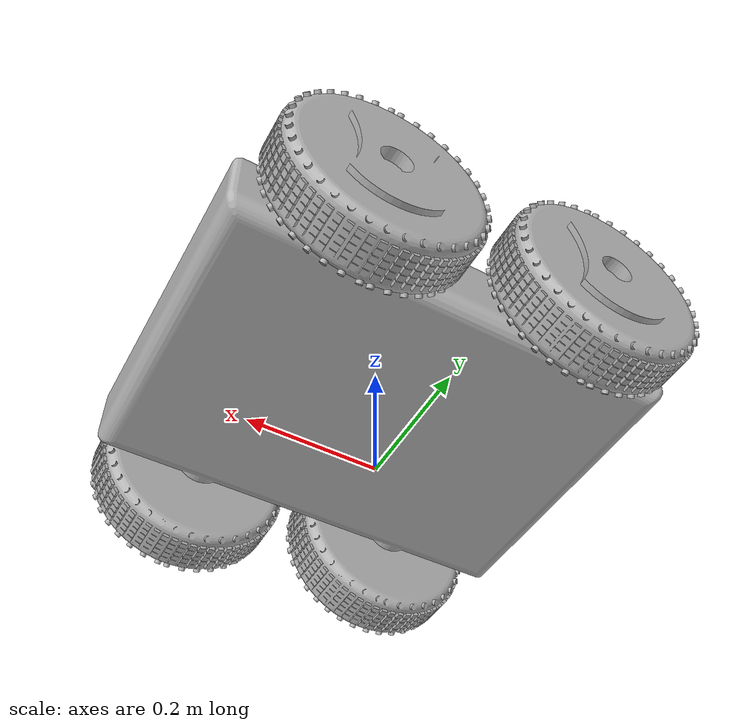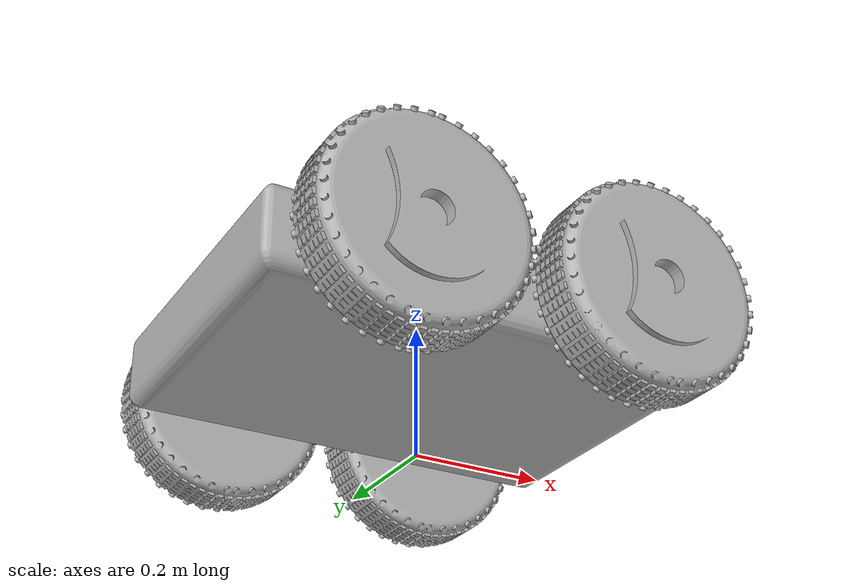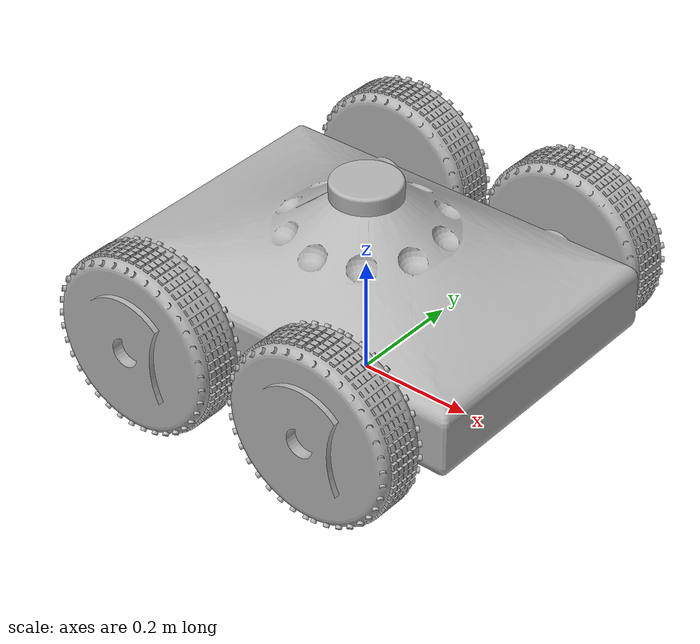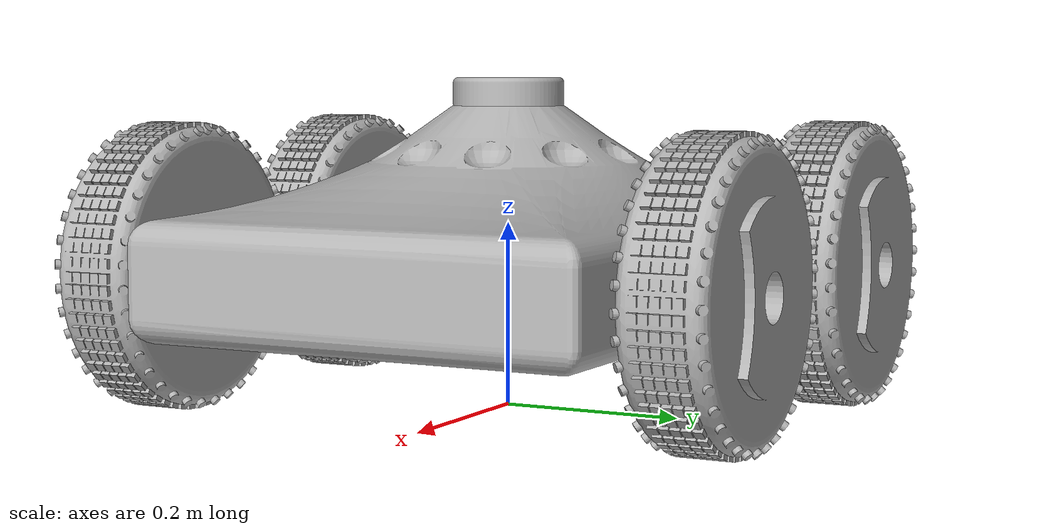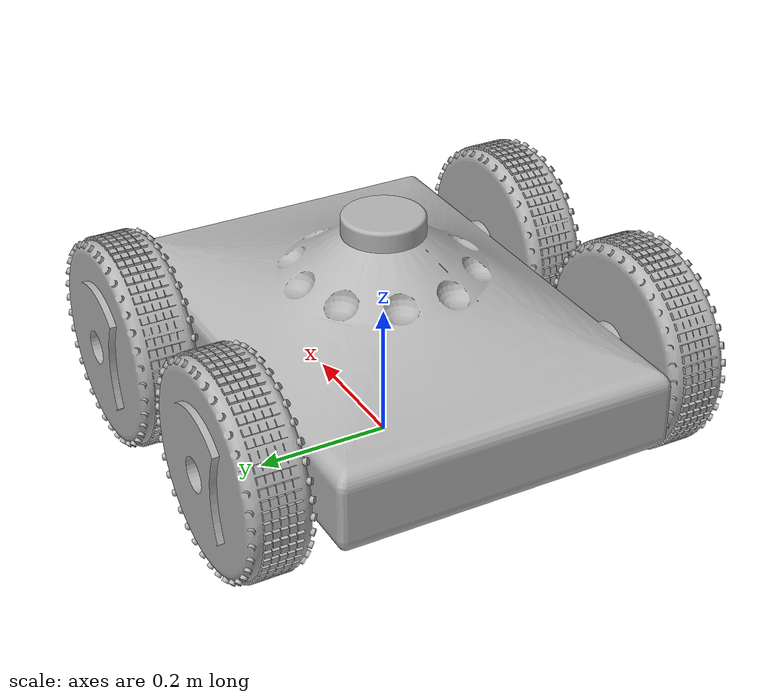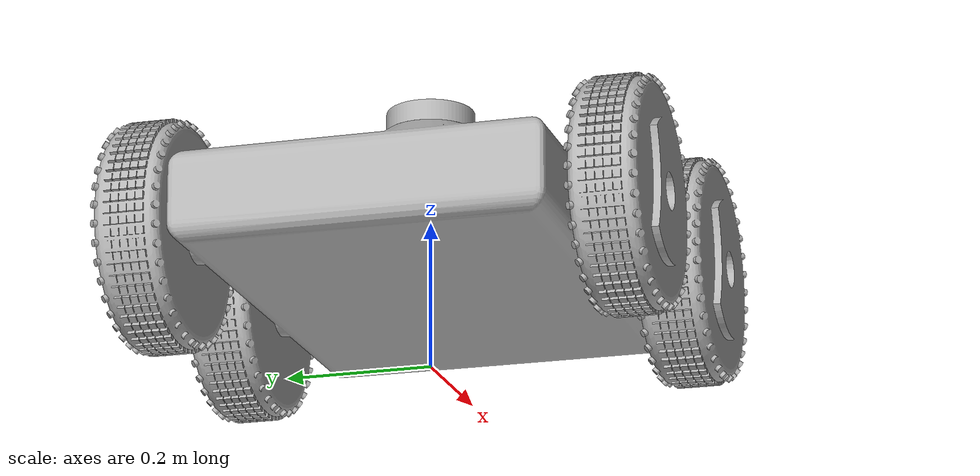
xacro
<?xml version="1.0" ?>
<robot name="gbot" xmlns:xacro="http://www.ros.org/wiki/xacro">

<xacro:include filename="$(find gbot_description)/urdf/materials.xacro" />
<xacro:include filename="$(find gbot_description)/urdf/gbot.trans" />
<xacro:include filename="$(find gbot_description)/urdf/gbot.gazebo" />
<link name="base_link">
  <inertial>
    <origin xyz="-9.393933552665679e-07 -2.165965709152816e-07 0.17194048530369713" rpy="0 0 0"/>
    <mass value="72.20766900922584"/>
    <inertia ixx="1.653982" iyy="2.747069" izz="4.052749" ixy="-2e-06" iyz="0.0" ixz="1e-06"/>
  </inertial>
  <visual>
    <origin xyz="0 0 0" rpy="0 0 0"/>
    <geometry>
      <mesh filename="package://gbot_description/meshes/base_link.stl" scale="0.001 0.001 0.001"/>
    </geometry>
    <material name="silver"/>
  </visual>
  <collision>
    <origin xyz="0 0 0" rpy="0 0 0"/>
    <geometry>
      <mesh filename="package://gbot_description/meshes/base_link.stl" scale="0.001 0.001 0.001"/>
    </geometry>
  </collision>
</link>

<link name="lidar_1">
  <inertial>
    <origin xyz="3.953623681769e-12 5.657535542014275e-12 0.014918354451196603" rpy="0 0 0"/>
    <mass value="0.5902873902138039"/>
    <inertia ixx="0.000572" iyy="0.000572" izz="0.001057" ixy="-0.0" iyz="-0.0" ixz="-0.0"/>
  </inertial>
  <visual>
    <origin xyz="0.0 -0.0 -0.32758" rpy="0 0 0"/>
    <geometry>
      <mesh filename="package://gbot_description/meshes/lidar_1.stl" scale="0.001 0.001 0.001"/>
    </geometry>
    <material name="silver"/>
  </visual>
  <collision>
    <origin xyz="0.0 -0.0 -0.32758" rpy="0 0 0"/>
    <geometry>
      <mesh filename="package://gbot_description/meshes/lidar_1.stl" scale="0.001 0.001 0.001"/>
    </geometry>
  </collision>
</link>

<link name="_flw_1">
  <inertial>
    <origin xyz="-1.0581438099149798e-05 -0.01295672824963795 4.5099003603832344e-07" rpy="0 0 0"/>
    <mass value="7.588715528859276"/>
    <inertia ixx="0.050298" iyy="0.089426" izz="0.049879" ixy="-0.0" iyz="-2e-06" ixz="1e-06"/>
  </inertial>
  <visual>
    <origin xyz="-0.175 -0.33 -0.15508" rpy="0 0 0"/>
    <geometry>
      <mesh filename="package://gbot_description/meshes/_flw_1.stl" scale="0.001 0.001 0.001"/>
    </geometry>
    <material name="silver"/>
  </visual>
  <collision>
    <origin xyz="-0.175 -0.33 -0.15508" rpy="0 0 0"/>
    <geometry>
      <mesh filename="package://gbot_description/meshes/_flw_1.stl" scale="0.001 0.001 0.001"/>
    </geometry>
  </collision>
</link>

<link name="frw_1">
  <inertial>
    <origin xyz="1.059119288390753e-05 0.012956731123297482 -4.5677149326794897e-07" rpy="0 0 0"/>
    <mass value="7.588703477399117"/>
    <inertia ixx="0.050298" iyy="0.089426" izz="0.049879" ixy="-0.0" iyz="-2e-06" ixz="0.0"/>
  </inertial>
  <visual>
    <origin xyz="-0.175 0.33 -0.15508" rpy="0 0 0"/>
    <geometry>
      <mesh filename="package://gbot_description/meshes/frw_1.stl" scale="0.001 0.001 0.001"/>
    </geometry>
    <material name="silver"/>
  </visual>
  <collision>
    <origin xyz="-0.175 0.33 -0.15508" rpy="0 0 0"/>
    <geometry>
      <mesh filename="package://gbot_description/meshes/frw_1.stl" scale="0.001 0.001 0.001"/>
    </geometry>
  </collision>
</link>

<link name="blw_1">
  <inertial>
    <origin xyz="1.0585605095397854e-05 -0.012956724638741701 3.904316508707151e-07" rpy="0 0 0"/>
    <mass value="7.588704309780978"/>
    <inertia ixx="0.050298" iyy="0.089426" izz="0.049879" ixy="0.0" iyz="-2e-06" ixz="-1e-06"/>
  </inertial>
  <visual>
    <origin xyz="0.175 -0.33 -0.15508" rpy="0 0 0"/>
    <geometry>
      <mesh filename="package://gbot_description/meshes/blw_1.stl" scale="0.001 0.001 0.001"/>
    </geometry>
    <material name="silver"/>
  </visual>
  <collision>
    <origin xyz="0.175 -0.33 -0.15508" rpy="0 0 0"/>
    <geometry>
      <mesh filename="package://gbot_description/meshes/blw_1.stl" scale="0.001 0.001 0.001"/>
    </geometry>
  </collision>
</link>

<link name="brw_1">
  <inertial>
    <origin xyz="1.058567770281793e-05 0.0129567311426807 3.8497833163009254e-07" rpy="0 0 0"/>
    <mass value="7.588715257119841"/>
    <inertia ixx="0.050298" iyy="0.089426" izz="0.049879" ixy="-0.0" iyz="2e-06" ixz="-0.0"/>
  </inertial>
  <visual>
    <origin xyz="0.175 0.33 -0.15508" rpy="0 0 0"/>
    <geometry>
      <mesh filename="package://gbot_description/meshes/brw_1.stl" scale="0.001 0.001 0.001"/>
    </geometry>
    <material name="silver"/>
  </visual>
  <collision>
    <origin xyz="0.175 0.33 -0.15508" rpy="0 0 0"/>
    <geometry>
      <mesh filename="package://gbot_description/meshes/brw_1.stl" scale="0.001 0.001 0.001"/>
    </geometry>
  </collision>
</link>

<joint name="l_j" type="fixed">
  <origin xyz="0.0 0.0 0.32758" rpy="0 0 0"/>
  <parent link="base_link"/>
  <child link="lidar_1"/>
</joint>

<joint name="flw_j" type="continuous">
  <origin xyz="0.175 0.33 0.15508" rpy="0 0 0"/>
  <parent link="base_link"/>
  <child link="_flw_1"/>
  <axis xyz="-0.0 1.0 0.0"/>
</joint>

<joint name=" frw_j" type="continuous">
  <origin xyz="0.175 -0.33 0.15508" rpy="0 0 0"/>
  <parent link="base_link"/>
  <child link="frw_1"/>
  <axis xyz="-0.0 1.0 0.0"/>
</joint>

<joint name="blw_j" type="continuous">
  <origin xyz="-0.175 0.33 0.15508" rpy="0 0 0"/>
  <parent link="base_link"/>
  <child link="blw_1"/>
  <axis xyz="0.0 1.0 0.0"/>
</joint>

<joint name="brw_j" type="continuous">
  <origin xyz="-0.175 -0.33 0.15508" rpy="0 0 0"/>
  <parent link="base_link"/>
  <child link="brw_1"/>
  <axis xyz="0.0 1.0 0.0"/>
</joint>

</robot>

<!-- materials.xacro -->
<robot name="gbot" xmlns:xacro="http://www.ros.org/wiki/xacro" >

<material name="silver">
  <color rgba="0.700 0.700 0.700 1.000"/>
</material>

</robot>

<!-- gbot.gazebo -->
<robot name="gbot" xmlns:xacro="http://www.ros.org/wiki/xacro" >

<xacro:property name="lidar_color" value="Gazebo/Green" />
<xacro:property name="wheel_color" value="Gazebo/Black" />
<xacro:property name="base_color" value="Gazebo/Orange" />

<gazebo>
  <plugin name="control" filename="libgazebo_ros_control.so"/>
</gazebo>
<gazebo reference="base_link">
  <material>${base_color}</material>
  <mu1>0.2</mu1>
  <mu2>0.2</mu2>
  <selfCollide>true</selfCollide>
  <gravity>true</gravity>
</gazebo>

<gazebo reference="lidar_1">
  <material>${lidar_color}</material>
  <mu1>0.2</mu1>
  <mu2>0.2</mu2>
  <selfCollide>true</selfCollide>
</gazebo>

<gazebo reference="_flw_1">
  <material>${wheel_color}</material>
  <mu1>0.2</mu1>
  <mu2>0.2</mu2>
  <selfCollide>true</selfCollide>
</gazebo>

<gazebo reference="frw_1">
  <material>${wheel_color}</material>
  <mu1>0.2</mu1>
  <mu2>0.2</mu2>
  <selfCollide>true</selfCollide>
</gazebo>

<gazebo reference="blw_1">
  <material>${wheel_color}</material>
  <mu1>0.2</mu1>
  <mu2>0.2</mu2>
  <selfCollide>true</selfCollide>
</gazebo>

<gazebo reference="brw_1">
  <material>${wheel_color}</material>
  <mu1>0.2</mu1>
  <mu2>0.2</mu2>
  <selfCollide>true</selfCollide>
</gazebo>

<gazebo>
  <plugin name="skid_steer_drive_controller" filename="libgazebo_ros_skid_steer_drive.so">
    <updateRate>100.0</updateRate>
    <robotNamespace>/</robotNamespace>
    <leftFrontJoint>flw_j</leftFrontJoint>
    <rightFrontJoint>frw_j</rightFrontJoint>
    <leftRearJoint>blw_j</leftRearJoint>
    <rightRearJoint>brw_j</rightRearJoint>
    <wheelSeparation>0.66</wheelSeparation>
    <wheelDiameter>0.300</wheelDiameter>
    <robotBaseFrame>base_link</robotBaseFrame>
    <torque>20</torque>
    <topicName>cmd_vel</topicName>
    <broadcastTF>true</broadcastTF>
  </plugin>
</gazebo>

  <!-- hokuyo -->
  <gazebo reference="lidar_1">
    <sensor type="ray" name="head_hokuyo_sensor">
      <pose>0 0 0 0 0 0</pose>
      <visualize>true</visualize>
      <update_rate>40</update_rate>
      <ray>
        <scan>
          <horizontal>
            <samples>720</samples>
            <resolution>1</resolution>
            <min_angle>-3.14</min_angle>
            <max_angle>3.14</max_angle>
          </horizontal>
        </scan>
        <range>
          <min>0.12</min>
          <max>30.0</max>
          <resolution>0.01</resolution>
        </range>
        <noise>
          <type>gaussian</type>
          <mean>0.0</mean>
          <stddev>0.01</stddev>
        </noise>
      </ray>
      <plugin name="gazebo_ros_head_hokuyo_controller" filename="libgazebo_ros_laser.so">
        <topicName>/scan</topicName>
        <frameName>lidar_1</frameName>
      </plugin>
    </sensor>
  </gazebo>

</robot>
